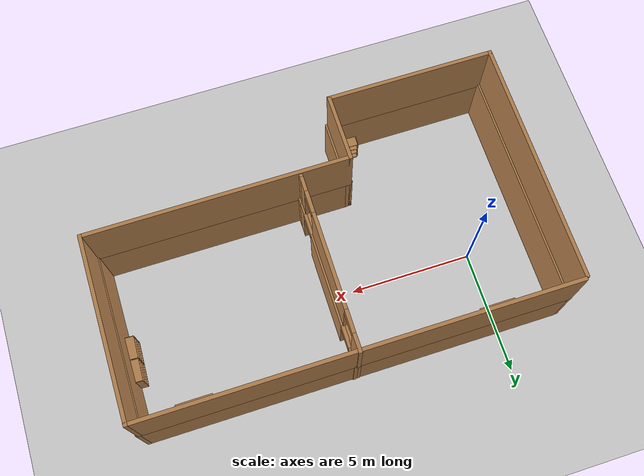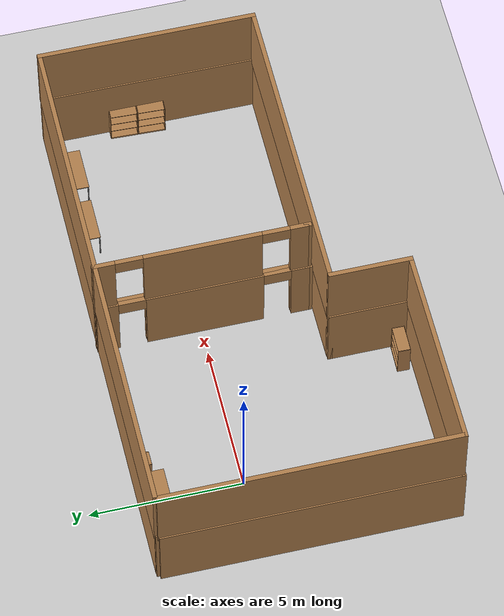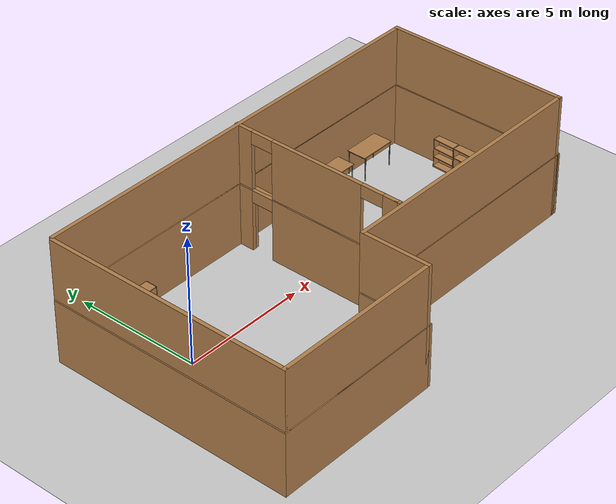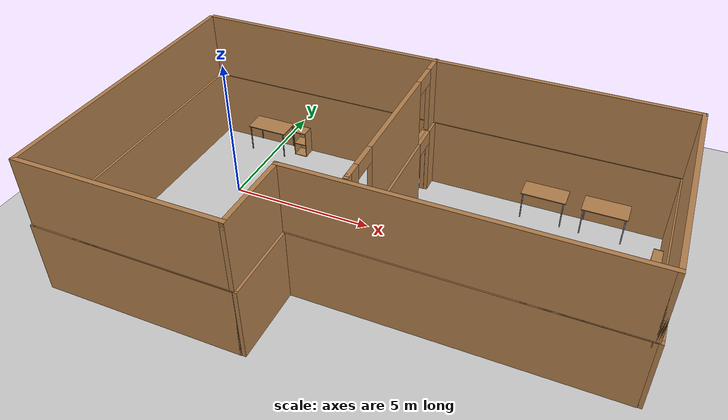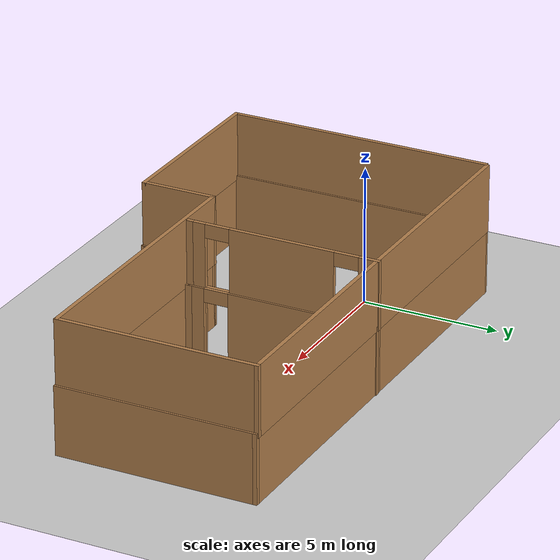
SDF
<sdf version="1.7">
 <world name="default">
  <light name="sun" type="directional">
   <pose>0 0 10 0 -0 0</pose>
   <diffuse>0.8 0.8 0.8 1</diffuse>
   <specular>0.2 0.2 0.2 1</specular>
   <attenuation>
    <range>1000</range>
    <constant>0.9</constant>
    <linear>0.01</linear>
    <quadratic>0.001</quadratic>
   </attenuation>
   <direction>-0.5 0.1 -0.9</direction>
   <spot><inner_angle>0</inner_angle><outer_angle>0</outer_angle><falloff>0</falloff></spot>
  </light>
  <model name="ground_plane">
   <static>1</static>
   <link name="link">
    <collision name="collision">
     <geometry><plane><normal>0 0 1</normal><size>100 100</size></plane></geometry>
     <surface><friction><ode><mu>100</mu><mu2>50</mu2></ode></friction></surface>
    </collision>
    <visual name="visual">
     <cast_shadows>0</cast_shadows>
     <geometry><plane><normal>0 0 1</normal><size>100 100</size></plane></geometry>
     <material>
      <script><uri>file://media/materials/scripts/gazebo.material</uri><name>Gazebo/Grey</name></script>
     </material>
    </visual>
   </link>
  </model>
  <gravity>0 0 -9.8</gravity>
  <magnetic_field>6e-06 2.3e-05 -4.2e-05</magnetic_field>
  <atmosphere type="adiabatic"/>
  <physics type="ode">
   <max_step_size>0.001</max_step_size>
   <real_time_factor>1</real_time_factor>
   <real_time_update_rate>1000</real_time_update_rate>
  </physics>
  <scene><ambient>0.4 0.4 0.4 1</ambient><background>0.7 0.7 0.7 1</background><shadows>1</shadows></scene>
  <audio><device>default</device></audio>
  <spherical_coordinates>
   <surface_model>EARTH_WGS84</surface_model>
   <latitude_deg>0</latitude_deg>
   <longitude_deg>0</longitude_deg>
   <elevation>0</elevation>
   <heading_deg>0</heading_deg>
  </spherical_coordinates>
  <model name="two_rooms_textured">
   <pose>5.81924 -1.50484 0 0 -0 0</pose>
   <link name="Wall_1">
    <collision name="Wall_1_Collision">
     <geometry><box><size>9.75 0.15 2.5</size></box></geometry>
     <pose>0 0 1.25 0 -0 0</pose>
    </collision>
    <visual name="Wall_1_Visual">
     <pose>0 0 1.25 0 -0 0</pose>
     <geometry><box><size>9.75 0.15 2.5</size></box></geometry>
     <material>
      <script><uri>file://media/materials/scripts/gazebo.material</uri><name>Gazebo/Wood</name></script>
      <ambient>1 1 1 1</ambient>
     </material>
     <meta><layer>0</layer></meta>
    </visual>
    <pose>-8.475 -0.066268 0 0 -0 -1.5708</pose>
   </link>
   <link name="Wall_10">
    <collision name="Wall_10_Collision">
     <geometry><box><size>0.25 0.15 2.5</size></box></geometry>
     <pose>0 0 1.25 0 -0 0</pose>
    </collision>
    <visual name="Wall_10_Visual">
     <pose>0 0 1.25 0 -0 0</pose>
     <geometry><box><size>0.25 0.15 2.5</size></box></geometry>
     <material>
      <script><uri>file://media/materials/scripts/gazebo.material</uri><name>Gazebo/Wood</name></script>
      <ambient>1 1 1 1</ambient>
     </material>
     <meta><layer>0</layer></meta>
    </visual>
    <pose>0.118491 -2.03373 0 0 -0 -1.5708</pose>
   </link>
   <link name="Wall_2">
    <collision name="Wall_2_Collision">
     <geometry><box><size>6.75 0.15 2.5</size></box></geometry>
     <pose>0 0 1.25 0 -0 0</pose>
    </collision>
    <visual name="Wall_2_Visual">
     <pose>0 0 1.25 0 -0 0</pose>
     <geometry><box><size>6.75 0.15 2.5</size></box></geometry>
     <material>
      <script><uri>file://media/materials/scripts/gazebo.material</uri><name>Gazebo/Wood</name></script>
      <ambient>1 1 1 1</ambient>
     </material>
     <meta><layer>0</layer></meta>
    </visual>
    <pose>-5.175 -4.86627 0 0 -0 0</pose>
   </link>
   <link name="Wall_3">
    <collision name="Wall_3_Collision">
     <geometry><box><size>2.75 0.15 2.5</size></box></geometry>
     <pose>0 0 1.25 0 -0 0</pose>
    </collision>
    <visual name="Wall_3_Visual">
     <pose>0 0 1.25 0 -0 0</pose>
     <geometry><box><size>2.75 0.15 2.5</size></box></geometry>
     <material>
      <script><uri>file://media/materials/scripts/gazebo.material</uri><name>Gazebo/Wood</name></script>
      <ambient>1 1 1 1</ambient>
     </material>
     <meta><layer>0</layer></meta>
    </visual>
    <pose>-1.875 -3.56627 0 0 -0 1.5708</pose>
   </link>
   <link name="Wall_4">
    <collision name="Wall_4_Collision">
     <geometry><box><size>10.5 0.15 2.5</size></box></geometry>
     <pose>0 0 1.25 0 -0 0</pose>
    </collision>
    <visual name="Wall_4_Visual">
     <pose>0 0 1.25 0 -0 0</pose>
     <geometry><box><size>10.5 0.15 2.5</size></box></geometry>
     <material>
      <script><uri>file://media/materials/scripts/gazebo.material</uri><name>Gazebo/Wood</name></script>
      <ambient>1 1 1 1</ambient>
     </material>
     <meta><layer>0</layer></meta>
    </visual>
    <pose>3.3 -2.26627 0 0 -0 0</pose>
   </link>
   <link name="Wall_5">
    <collision name="Wall_5_Collision">
     <geometry><box><size>7.25 0.15 2.5</size></box></geometry>
     <pose>0 0 1.25 0 -0 0</pose>
    </collision>
    <visual name="Wall_5_Visual">
     <pose>0 0 1.25 0 -0 0</pose>
     <geometry><box><size>7.25 0.15 2.5</size></box></geometry>
     <material>
      <script><uri>file://media/materials/scripts/gazebo.material</uri><name>Gazebo/Wood</name></script>
      <ambient>1 1 1 1</ambient>
     </material>
     <meta><layer>0</layer></meta>
    </visual>
    <pose>8.475 1.28373 0 0 -0 1.5708</pose>
   </link>
   <link name="Wall_6">
    <collision name="Wall_6_Collision">
     <geometry><box><size>17 0.15 2.5</size></box></geometry>
     <pose>0 0 1.25 0 -0 0</pose>
    </collision>
    <visual name="Wall_6_Visual">
     <pose>0 0 1.25 0 -0 0</pose>
     <geometry><box><size>17 0.15 2.5</size></box></geometry>
     <material>
      <script><uri>file://media/materials/scripts/gazebo.material</uri><name>Gazebo/Wood</name></script>
      <ambient>1 1 1 1</ambient>
     </material>
     <meta><layer>0</layer></meta>
    </visual>
    <pose>0.05 4.83373 0 0 -0 3.14159</pose>
   </link>
   <link name="Wall_8">
    <pose>0.118491 1.44127 0 0 -0 -1.5708</pose>
    <visual name="Wall_8_Visual_0">
     <pose>-3.12464 0 1.25 0 -0 0</pose>
     <geometry><box><size>0.750721 0.15 2.5</size></box></geometry>
     <material>
      <script><uri>file://media/materials/scripts/gazebo.material</uri><name>Gazebo/Wood</name></script>
      <ambient>1 1 1 1</ambient>
     </material>
     <meta><layer>0</layer></meta>
    </visual>
    <collision name="Wall_8_Collision_0">
     <geometry><box><size>0.750721 0.15 2.5</size></box></geometry>
     <pose>-3.12464 0 1.25 0 -0 0</pose>
    </collision>
    <visual name="Wall_8_Visual_1">
     <pose>0.075287 0 1.25 0 -0 0</pose>
     <geometry><box><size>3.84913 0.15 2.5</size></box></geometry>
     <material>
      <script><uri>file://media/materials/scripts/gazebo.material</uri><name>Gazebo/Wood</name></script>
      <ambient>1 1 1 1</ambient>
     </material>
     <meta><layer>0</layer></meta>
    </visual>
    <collision name="Wall_8_Collision_1">
     <geometry><box><size>3.84913 0.15 2.5</size></box></geometry>
     <pose>0.075287 0 1.25 0 -0 0</pose>
    </collision>
    <visual name="Wall_8_Visual_2">
     <pose>3.19993 0 1.25 0 -0 0</pose>
     <geometry><box><size>0.600146 0.15 2.5</size></box></geometry>
     <material>
      <script><uri>file://media/materials/scripts/gazebo.material</uri><name>Gazebo/Wood</name></script>
      <ambient>1 1 1 1</ambient>
     </material>
     <meta><layer>0</layer></meta>
    </visual>
    <collision name="Wall_8_Collision_2">
     <geometry><box><size>0.600146 0.15 2.5</size></box></geometry>
     <pose>3.19993 0 1.25 0 -0 0</pose>
    </collision>
    <visual name="Wall_8_Visual_3">
     <pose>-2.29928 0 2.25 0 -0 0</pose>
     <geometry><box><size>0.9 0.15 0.5</size></box></geometry>
     <material>
      <script><uri>file://media/materials/scripts/gazebo.material</uri><name>Gazebo/Wood</name></script>
      <ambient>1 1 1 1</ambient>
     </material>
     <meta><layer>0</layer></meta>
    </visual>
    <collision name="Wall_8_Collision_3">
     <geometry><box><size>0.9 0.15 0.5</size></box></geometry>
     <pose>-2.29928 0 2.25 0 -0 0</pose>
    </collision>
    <visual name="Wall_8_Visual_4">
     <pose>2.44985 0 2.25 0 -0 0</pose>
     <geometry><box><size>0.9 0.15 0.5</size></box></geometry>
     <material>
      <script><uri>file://media/materials/scripts/gazebo.material</uri><name>Gazebo/Wood</name></script>
      <ambient>1 1 1 1</ambient>
     </material>
     <meta><layer>0</layer></meta>
    </visual>
    <collision name="Wall_8_Collision_4">
     <geometry><box><size>0.9 0.15 0.5</size></box></geometry>
     <pose>2.44985 0 2.25 0 -0 0</pose>
    </collision>
   </link>
   <static>1</static>
  </model>
  <model name="table">
   <static>1</static>
   <link name="link">
    <collision name="surface">
     <pose>0 0 1 0 -0 0</pose>
     <geometry><box><size>1.5 0.8 0.03</size></box></geometry>
     <surface><friction><ode><mu>0.6</mu><mu2>0.6</mu2></ode></friction></surface>
    </collision>
    <visual name="visual1">
     <pose>0 0 1 0 -0 0</pose>
     <geometry><box><size>1.5 0.8 0.03</size></box></geometry>
     <material>
      <script><uri>file://media/materials/scripts/gazebo.material</uri><name>Gazebo/Wood</name></script>
     </material>
    </visual>
    <collision name="front_left_leg">
     <pose>0.68 0.38 0.5 0 -0 0</pose>
     <geometry><cylinder><radius>0.02</radius><length>1</length></cylinder></geometry>
    </collision>
    <visual name="front_left_leg">
     <pose>0.68 0.38 0.5 0 -0 0</pose>
     <geometry><cylinder><radius>0.02</radius><length>1</length></cylinder></geometry>
     <material>
      <script><uri>file://media/materials/scripts/gazebo.material</uri><name>Gazebo/Grey</name></script>
     </material>
    </visual>
    <collision name="front_right_leg">
     <pose>0.68 -0.38 0.5 0 -0 0</pose>
     <geometry><cylinder><radius>0.02</radius><length>1</length></cylinder></geometry>
    </collision>
    <visual name="front_right_leg">
     <pose>0.68 -0.38 0.5 0 -0 0</pose>
     <geometry><cylinder><radius>0.02</radius><length>1</length></cylinder></geometry>
     <material>
      <script><uri>file://media/materials/scripts/gazebo.material</uri><name>Gazebo/Grey</name></script>
     </material>
    </visual>
    <collision name="back_right_leg">
     <pose>-0.68 -0.38 0.5 0 -0 0</pose>
     <geometry><cylinder><radius>0.02</radius><length>1</length></cylinder></geometry>
    </collision>
    <visual name="back_right_leg">
     <pose>-0.68 -0.38 0.5 0 -0 0</pose>
     <geometry><cylinder><radius>0.02</radius><length>1</length></cylinder></geometry>
     <material>
      <script><uri>file://media/materials/scripts/gazebo.material</uri><name>Gazebo/Grey</name></script>
     </material>
    </visual>
    <collision name="back_left_leg">
     <pose>-0.68 0.38 0.5 0 -0 0</pose>
     <geometry><cylinder><radius>0.02</radius><length>1</length></cylinder></geometry>
    </collision>
    <visual name="back_left_leg">
     <pose>-0.68 0.38 0.5 0 -0 0</pose>
     <geometry><cylinder><radius>0.02</radius><length>1</length></cylinder></geometry>
     <material>
      <script><uri>file://media/materials/scripts/gazebo.material</uri><name>Gazebo/Grey</name></script>
     </material>
    </visual>
   </link>
   <pose>-0.208377 2.85847 0 0 -0 0</pose>
  </model>
  <model name="table_1">
   <static>1</static>
   <link name="link">
    <collision name="surface">
     <pose>0 0 1 0 -0 0</pose>
     <geometry><box><size>1.5 0.8 0.03</size></box></geometry>
     <surface><friction><ode><mu>0.6</mu><mu2>0.6</mu2></ode></friction></surface>
    </collision>
    <visual name="visual1">
     <pose>0 0 1 0 -0 0</pose>
     <geometry><box><size>1.5 0.8 0.03</size></box></geometry>
     <material>
      <script><uri>file://media/materials/scripts/gazebo.material</uri><name>Gazebo/Wood</name></script>
     </material>
    </visual>
    <collision name="front_left_leg">
     <pose>0.68 0.38 0.5 0 -0 0</pose>
     <geometry><cylinder><radius>0.02</radius><length>1</length></cylinder></geometry>
    </collision>
    <visual name="front_left_leg">
     <pose>0.68 0.38 0.5 0 -0 0</pose>
     <geometry><cylinder><radius>0.02</radius><length>1</length></cylinder></geometry>
     <material>
      <script><uri>file://media/materials/scripts/gazebo.material</uri><name>Gazebo/Grey</name></script>
     </material>
    </visual>
    <collision name="front_right_leg">
     <pose>0.68 -0.38 0.5 0 -0 0</pose>
     <geometry><cylinder><radius>0.02</radius><length>1</length></cylinder></geometry>
    </collision>
    <visual name="front_right_leg">
     <pose>0.68 -0.38 0.5 0 -0 0</pose>
     <geometry><cylinder><radius>0.02</radius><length>1</length></cylinder></geometry>
     <material>
      <script><uri>file://media/materials/scripts/gazebo.material</uri><name>Gazebo/Grey</name></script>
     </material>
    </visual>
    <collision name="back_right_leg">
     <pose>-0.68 -0.38 0.5 0 -0 0</pose>
     <geometry><cylinder><radius>0.02</radius><length>1</length></cylinder></geometry>
    </collision>
    <visual name="back_right_leg">
     <pose>-0.68 -0.38 0.5 0 -0 0</pose>
     <geometry><cylinder><radius>0.02</radius><length>1</length></cylinder></geometry>
     <material>
      <script><uri>file://media/materials/scripts/gazebo.material</uri><name>Gazebo/Grey</name></script>
     </material>
    </visual>
    <collision name="back_left_leg">
     <pose>-0.68 0.38 0.5 0 -0 0</pose>
     <geometry><cylinder><radius>0.02</radius><length>1</length></cylinder></geometry>
    </collision>
    <visual name="back_left_leg">
     <pose>-0.68 0.38 0.5 0 -0 0</pose>
     <geometry><cylinder><radius>0.02</radius><length>1</length></cylinder></geometry>
     <material>
      <script><uri>file://media/materials/scripts/gazebo.material</uri><name>Gazebo/Grey</name></script>
     </material>
    </visual>
   </link>
   <pose>12.2837 2.8566 0 0 -0 0</pose>
  </model>
  <model name="bookshelf">
   <static>1</static>
   <link name="link">
    <inertial><mass>1</mass></inertial>
    <collision name="back">
     <pose>0 0.005 0.6 0 -0 0</pose>
     <geometry><box><size>0.9 0.01 1.2</size></box></geometry>
    </collision>
    <visual name="visual1">
     <pose>0 0.005 0.6 0 -0 0</pose>
     <geometry><box><size>0.9 0.01 1.2</size></box></geometry>
     <material>
      <script><uri>file://media/materials/scripts/gazebo.material</uri><name>Gazebo/Wood</name></script>
     </material>
    </visual>
    <collision name="left_side">
     <pose>0.45 -0.195 0.6 0 -0 0</pose>
     <geometry><box><size>0.02 0.4 1.2</size></box></geometry>
    </collision>
    <visual name="visual2">
     <pose>0.45 -0.195 0.6 0 -0 0</pose>
     <geometry><box><size>0.02 0.4 1.2</size></box></geometry>
     <material>
      <script><uri>file://media/materials/scripts/gazebo.material</uri><name>Gazebo/Wood</name></script>
     </material>
    </visual>
    <collision name="right_side">
     <pose>-0.45 -0.195 0.6 0 -0 0</pose>
     <geometry><box><size>0.02 0.4 1.2</size></box></geometry>
    </collision>
    <visual name="visual3">
     <pose>-0.45 -0.195 0.6 0 -0 0</pose>
     <geometry><box><size>0.02 0.4 1.2</size></box></geometry>
     <material>
      <script><uri>file://media/materials/scripts/gazebo.material</uri><name>Gazebo/Wood</name></script>
     </material>
    </visual>
    <collision name="bottom">
     <pose>0 -0.195 0.03 0 -0 0</pose>
     <geometry><box><size>0.88 0.4 0.06</size></box></geometry>
    </collision>
    <visual name="visual4">
     <pose>0 -0.195 0.03 0 -0 0</pose>
     <geometry><box><size>0.88 0.4 0.06</size></box></geometry>
     <material>
      <script><uri>file://media/materials/scripts/gazebo.material</uri><name>Gazebo/Wood</name></script>
     </material>
    </visual>
    <collision name="top">
     <pose>0 -0.195 1.19 0 -0 0</pose>
     <geometry><box><size>0.88 0.4 0.02</size></box></geometry>
    </collision>
    <visual name="visual5">
     <pose>0 -0.195 1.19 0 -0 0</pose>
     <geometry><box><size>0.88 0.4 0.02</size></box></geometry>
     <material>
      <script><uri>file://media/materials/scripts/gazebo.material</uri><name>Gazebo/Wood</name></script>
     </material>
    </visual>
    <collision name="low_shelf">
     <pose>0 -0.195 0.43 0 -0 0</pose>
     <geometry><box><size>0.88 0.4 0.02</size></box></geometry>
    </collision>
    <visual name="visual6">
     <pose>0 -0.195 0.43 0 -0 0</pose>
     <geometry><box><size>0.88 0.4 0.02</size></box></geometry>
     <material>
      <script><uri>file://media/materials/scripts/gazebo.material</uri><name>Gazebo/Wood</name></script>
     </material>
    </visual>
    <collision name="high_shelf">
     <pose>0 -0.195 0.8 0 -0 0</pose>
     <geometry><box><size>0.88 0.4 0.02</size></box></geometry>
    </collision>
    <visual name="visual7">
     <pose>0 -0.195 0.8 0 -0 0</pose>
     <geometry><box><size>0.88 0.4 0.02</size></box></geometry>
     <material>
      <script><uri>file://media/materials/scripts/gazebo.material</uri><name>Gazebo/Wood</name></script>
     </material>
    </visual>
   </link>
   <pose>3.35475 -6.16345 0 0 -0 3.11844</pose>
  </model>
  <model name="cabinet">
   <static>1</static>
   <link name="cabinet_bottom_plate">
    <inertial>
     <pose>0 0 -1 0 -0 0</pose>
     <inertia><ixx>2.05</ixx><ixy>0</ixy><ixz>0</ixz><iyy>2.05</iyy><iyz>0</iyz><izz>2.05</izz></inertia>
     <mass>25</mass>
    </inertial>
    <collision name="cabinet_bottom_plate_geom">
     <pose>0 0 0.01 0 -0 0</pose>
     <geometry><box><size>0.45 0.45 0.02</size></box></geometry>
    </collision>
    <visual name="cabinet_bottom_plate_geom_visual">
     <pose>0 0 0.01 0 -0 0</pose>
     <geometry><box><size>0.45 0.45 0.02</size></box></geometry>
     <material>
      <script><uri>file://media/materials/scripts/gazebo.material</uri><name>Gazebo/Wood</name></script>
     </material>
    </visual>
    <collision name="cabinet_bottom_plate_geom_cabinet_back_plate">
     <pose>0.235 0 0.51 0 -0 0</pose>
     <geometry><box><size>0.02 0.45 1.02</size></box></geometry>
    </collision>
    <visual name="cabinet_bottom_plate_geom_cabinet_back_plate_visual">
     <pose>0.235 0 0.51 0 -0 0</pose>
     <geometry><box><size>0.02 0.45 1.02</size></box></geometry>
     <material>
      <script><uri>file://media/materials/scripts/gazebo.material</uri><name>Gazebo/Wood</name></script>
     </material>
    </visual>
    <collision name="cabinet_bottom_plate_geom_cabinet_left_plate">
     <pose>0 0.235 0.51 0 -0 0</pose>
     <geometry><box><size>0.45 0.02 1.02</size></box></geometry>
    </collision>
    <visual name="cabinet_bottom_plate_geom_cabinet_left_plate_visual">
     <pose>0 0.235 0.51 0 -0 0</pose>
     <geometry><box><size>0.45 0.02 1.02</size></box></geometry>
     <material>
      <script><uri>file://media/materials/scripts/gazebo.material</uri><name>Gazebo/Wood</name></script>
     </material>
    </visual>
    <collision name="cabinet_bottom_plate_geom_cabinet_middle_plate">
     <pose>0 0 0.51 0 -0 0</pose>
     <geometry><box><size>0.45 0.45 0.02</size></box></geometry>
    </collision>
    <visual name="cabinet_bottom_plate_geom_cabinet_middle_plate_visual">
     <pose>0 0 0.51 0 -0 0</pose>
     <geometry><box><size>0.45 0.45 0.02</size></box></geometry>
     <material>
      <script><uri>file://media/materials/scripts/gazebo.material</uri><name>Gazebo/Wood</name></script>
     </material>
    </visual>
    <collision name="cabinet_bottom_plate_geom_cabinet_right_plate">
     <pose>0 -0.235 0.51 0 -0 0</pose>
     <geometry><box><size>0.45 0.02 1.02</size></box></geometry>
    </collision>
    <visual name="cabinet_bottom_plate_geom_cabinet_right_plate_visual">
     <pose>0 -0.235 0.51 0 -0 0</pose>
     <geometry><box><size>0.45 0.02 1.02</size></box></geometry>
     <material>
      <script><uri>file://media/materials/scripts/gazebo.material</uri><name>Gazebo/Wood</name></script>
     </material>
    </visual>
    <collision name="cabinet_bottom_plate_geom_cabinet_top_plate">
     <pose>0 0 1.01 0 -0 0</pose>
     <geometry><box><size>0.45 0.45 0.02</size></box></geometry>
    </collision>
    <visual name="cabinet_bottom_plate_geom_cabinet_top_plate_visual">
     <pose>0 0 1.01 0 -0 0</pose>
     <geometry><box><size>0.45 0.45 0.02</size></box></geometry>
     <material>
      <script><uri>file://media/materials/scripts/gazebo.material</uri><name>Gazebo/Wood</name></script>
     </material>
    </visual>
   </link>
   <pose>1.01782 3.00182 0 0 -0 1.57288</pose>
  </model>
  <model name="bookshelf_clone">
   <static>1</static>
   <link name="link">
    <inertial><mass>1</mass></inertial>
    <collision name="back">
     <pose>0 0.005 0.6 0 -0 0</pose>
     <geometry><box><size>0.9 0.01 1.2</size></box></geometry>
    </collision>
    <visual name="visual1">
     <pose>0 0.005 0.6 0 -0 0</pose>
     <geometry><box><size>0.9 0.01 1.2</size></box></geometry>
     <material>
      <script><uri>file://media/materials/scripts/gazebo.material</uri><name>Gazebo/Wood</name></script>
     </material>
    </visual>
    <collision name="left_side">
     <pose>0.45 -0.195 0.6 0 -0 0</pose>
     <geometry><box><size>0.02 0.4 1.2</size></box></geometry>
    </collision>
    <visual name="visual2">
     <pose>0.45 -0.195 0.6 0 -0 0</pose>
     <geometry><box><size>0.02 0.4 1.2</size></box></geometry>
     <material>
      <script><uri>file://media/materials/scripts/gazebo.material</uri><name>Gazebo/Wood</name></script>
     </material>
    </visual>
    <collision name="right_side">
     <pose>-0.45 -0.195 0.6 0 -0 0</pose>
     <geometry><box><size>0.02 0.4 1.2</size></box></geometry>
    </collision>
    <visual name="visual3">
     <pose>-0.45 -0.195 0.6 0 -0 0</pose>
     <geometry><box><size>0.02 0.4 1.2</size></box></geometry>
     <material>
      <script><uri>file://media/materials/scripts/gazebo.material</uri><name>Gazebo/Wood</name></script>
     </material>
    </visual>
    <collision name="bottom">
     <pose>0 -0.195 0.03 0 -0 0</pose>
     <geometry><box><size>0.88 0.4 0.06</size></box></geometry>
    </collision>
    <visual name="visual4">
     <pose>0 -0.195 0.03 0 -0 0</pose>
     <geometry><box><size>0.88 0.4 0.06</size></box></geometry>
     <material>
      <script><uri>file://media/materials/scripts/gazebo.material</uri><name>Gazebo/Wood</name></script>
     </material>
    </visual>
    <collision name="top">
     <pose>0 -0.195 1.19 0 -0 0</pose>
     <geometry><box><size>0.88 0.4 0.02</size></box></geometry>
    </collision>
    <visual name="visual5">
     <pose>0 -0.195 1.19 0 -0 0</pose>
     <geometry><box><size>0.88 0.4 0.02</size></box></geometry>
     <material>
      <script><uri>file://media/materials/scripts/gazebo.material</uri><name>Gazebo/Wood</name></script>
     </material>
    </visual>
    <collision name="low_shelf">
     <pose>0 -0.195 0.43 0 -0 0</pose>
     <geometry><box><size>0.88 0.4 0.02</size></box></geometry>
    </collision>
    <visual name="visual6">
     <pose>0 -0.195 0.43 0 -0 0</pose>
     <geometry><box><size>0.88 0.4 0.02</size></box></geometry>
     <material>
      <script><uri>file://media/materials/scripts/gazebo.material</uri><name>Gazebo/Wood</name></script>
     </material>
    </visual>
    <collision name="high_shelf">
     <pose>0 -0.195 0.8 0 -0 0</pose>
     <geometry><box><size>0.88 0.4 0.02</size></box></geometry>
    </collision>
    <visual name="visual7">
     <pose>0 -0.195 0.8 0 -0 0</pose>
     <geometry><box><size>0.88 0.4 0.02</size></box></geometry>
     <material>
      <script><uri>file://media/materials/scripts/gazebo.material</uri><name>Gazebo/Wood</name></script>
     </material>
    </visual>
   </link>
   <pose>14.276 -0.178796 0 0 0 -1.60838</pose>
  </model>
  <model name="bookshelf_clone_clone">
   <static>1</static>
   <link name="link">
    <inertial><mass>1</mass></inertial>
    <collision name="back">
     <pose>0 0.005 0.6 0 -0 0</pose>
     <geometry><box><size>0.9 0.01 1.2</size></box></geometry>
    </collision>
    <visual name="visual1">
     <pose>0 0.005 0.6 0 -0 0</pose>
     <geometry><box><size>0.9 0.01 1.2</size></box></geometry>
     <material>
      <script><uri>file://media/materials/scripts/gazebo.material</uri><name>Gazebo/Wood</name></script>
     </material>
    </visual>
    <collision name="left_side">
     <pose>0.45 -0.195 0.6 0 -0 0</pose>
     <geometry><box><size>0.02 0.4 1.2</size></box></geometry>
    </collision>
    <visual name="visual2">
     <pose>0.45 -0.195 0.6 0 -0 0</pose>
     <geometry><box><size>0.02 0.4 1.2</size></box></geometry>
     <material>
      <script><uri>file://media/materials/scripts/gazebo.material</uri><name>Gazebo/Wood</name></script>
     </material>
    </visual>
    <collision name="right_side">
     <pose>-0.45 -0.195 0.6 0 -0 0</pose>
     <geometry><box><size>0.02 0.4 1.2</size></box></geometry>
    </collision>
    <visual name="visual3">
     <pose>-0.45 -0.195 0.6 0 -0 0</pose>
     <geometry><box><size>0.02 0.4 1.2</size></box></geometry>
     <material>
      <script><uri>file://media/materials/scripts/gazebo.material</uri><name>Gazebo/Wood</name></script>
     </material>
    </visual>
    <collision name="bottom">
     <pose>0 -0.195 0.03 0 -0 0</pose>
     <geometry><box><size>0.88 0.4 0.06</size></box></geometry>
    </collision>
    <visual name="visual4">
     <pose>0 -0.195 0.03 0 -0 0</pose>
     <geometry><box><size>0.88 0.4 0.06</size></box></geometry>
     <material>
      <script><uri>file://media/materials/scripts/gazebo.material</uri><name>Gazebo/Wood</name></script>
     </material>
    </visual>
    <collision name="top">
     <pose>0 -0.195 1.19 0 -0 0</pose>
     <geometry><box><size>0.88 0.4 0.02</size></box></geometry>
    </collision>
    <visual name="visual5">
     <pose>0 -0.195 1.19 0 -0 0</pose>
     <geometry><box><size>0.88 0.4 0.02</size></box></geometry>
     <material>
      <script><uri>file://media/materials/scripts/gazebo.material</uri><name>Gazebo/Wood</name></script>
     </material>
    </visual>
    <collision name="low_shelf">
     <pose>0 -0.195 0.43 0 -0 0</pose>
     <geometry><box><size>0.88 0.4 0.02</size></box></geometry>
    </collision>
    <visual name="visual6">
     <pose>0 -0.195 0.43 0 -0 0</pose>
     <geometry><box><size>0.88 0.4 0.02</size></box></geometry>
     <material>
      <script><uri>file://media/materials/scripts/gazebo.material</uri><name>Gazebo/Wood</name></script>
     </material>
    </visual>
    <collision name="high_shelf">
     <pose>0 -0.195 0.8 0 -0 0</pose>
     <geometry><box><size>0.88 0.4 0.02</size></box></geometry>
    </collision>
    <visual name="visual7">
     <pose>0 -0.195 0.8 0 -0 0</pose>
     <geometry><box><size>0.88 0.4 0.02</size></box></geometry>
     <material>
      <script><uri>file://media/materials/scripts/gazebo.material</uri><name>Gazebo/Wood</name></script>
     </material>
    </visual>
   </link>
   <pose>14.3083 0.744193 0 0 0 -1.60838</pose>
  </model>
  <model name="table_1_clone">
   <static>1</static>
   <link name="link">
    <collision name="surface">
     <pose>0 0 1 0 -0 0</pose>
     <geometry><box><size>1.5 0.8 0.03</size></box></geometry>
     <surface><friction><ode><mu>0.6</mu><mu2>0.6</mu2></ode></friction></surface>
    </collision>
    <visual name="visual1">
     <pose>0 0 1 0 -0 0</pose>
     <geometry><box><size>1.5 0.8 0.03</size></box></geometry>
     <material>
      <script><uri>file://media/materials/scripts/gazebo.material</uri><name>Gazebo/Wood</name></script>
     </material>
    </visual>
    <collision name="front_left_leg">
     <pose>0.68 0.38 0.5 0 -0 0</pose>
     <geometry><cylinder><radius>0.02</radius><length>1</length></cylinder></geometry>
    </collision>
    <visual name="front_left_leg">
     <pose>0.68 0.38 0.5 0 -0 0</pose>
     <geometry><cylinder><radius>0.02</radius><length>1</length></cylinder></geometry>
     <material>
      <script><uri>file://media/materials/scripts/gazebo.material</uri><name>Gazebo/Grey</name></script>
     </material>
    </visual>
    <collision name="front_right_leg">
     <pose>0.68 -0.38 0.5 0 -0 0</pose>
     <geometry><cylinder><radius>0.02</radius><length>1</length></cylinder></geometry>
    </collision>
    <visual name="front_right_leg">
     <pose>0.68 -0.38 0.5 0 -0 0</pose>
     <geometry><cylinder><radius>0.02</radius><length>1</length></cylinder></geometry>
     <material>
      <script><uri>file://media/materials/scripts/gazebo.material</uri><name>Gazebo/Grey</name></script>
     </material>
    </visual>
    <collision name="back_right_leg">
     <pose>-0.68 -0.38 0.5 0 -0 0</pose>
     <geometry><cylinder><radius>0.02</radius><length>1</length></cylinder></geometry>
    </collision>
    <visual name="back_right_leg">
     <pose>-0.68 -0.38 0.5 0 -0 0</pose>
     <geometry><cylinder><radius>0.02</radius><length>1</length></cylinder></geometry>
     <material>
      <script><uri>file://media/materials/scripts/gazebo.material</uri><name>Gazebo/Grey</name></script>
     </material>
    </visual>
    <collision name="back_left_leg">
     <pose>-0.68 0.38 0.5 0 -0 0</pose>
     <geometry><cylinder><radius>0.02</radius><length>1</length></cylinder></geometry>
    </collision>
    <visual name="back_left_leg">
     <pose>-0.68 0.38 0.5 0 -0 0</pose>
     <geometry><cylinder><radius>0.02</radius><length>1</length></cylinder></geometry>
     <material>
      <script><uri>file://media/materials/scripts/gazebo.material</uri><name>Gazebo/Grey</name></script>
     </material>
    </visual>
   </link>
   <pose>10.2658 2.91411 0 0 -0 0</pose>
  </model>
  <model name="two_rooms_textured_0">
   <pose>5.86759 -1.46527 2.3266 0 -0 0</pose>
   <link name="Wall_1">
    <collision name="Wall_1_Collision">
     <geometry><box><size>9.75 0.15 2.5</size></box></geometry>
     <pose>0 0 1.25 0 -0 0</pose>
    </collision>
    <visual name="Wall_1_Visual">
     <pose>0 0 1.25 0 -0 0</pose>
     <geometry><box><size>9.75 0.15 2.5</size></box></geometry>
     <material>
      <script><uri>file://media/materials/scripts/gazebo.material</uri><name>Gazebo/Wood</name></script>
      <ambient>1 1 1 1</ambient>
     </material>
     <meta><layer>0</layer></meta>
    </visual>
    <pose>-8.475 -0.066268 0 0 -0 -1.5708</pose>
   </link>
   <link name="Wall_10">
    <collision name="Wall_10_Collision">
     <geometry><box><size>0.25 0.15 2.5</size></box></geometry>
     <pose>0 0 1.25 0 -0 0</pose>
    </collision>
    <visual name="Wall_10_Visual">
     <pose>0 0 1.25 0 -0 0</pose>
     <geometry><box><size>0.25 0.15 2.5</size></box></geometry>
     <material>
      <script><uri>file://media/materials/scripts/gazebo.material</uri><name>Gazebo/Wood</name></script>
      <ambient>1 1 1 1</ambient>
     </material>
     <meta><layer>0</layer></meta>
    </visual>
    <pose>0.118491 -2.03373 0 0 -0 -1.5708</pose>
   </link>
   <link name="Wall_2">
    <collision name="Wall_2_Collision">
     <geometry><box><size>6.75 0.15 2.5</size></box></geometry>
     <pose>0 0 1.25 0 -0 0</pose>
    </collision>
    <visual name="Wall_2_Visual">
     <pose>0 0 1.25 0 -0 0</pose>
     <geometry><box><size>6.75 0.15 2.5</size></box></geometry>
     <material>
      <script><uri>file://media/materials/scripts/gazebo.material</uri><name>Gazebo/Wood</name></script>
      <ambient>1 1 1 1</ambient>
     </material>
     <meta><layer>0</layer></meta>
    </visual>
    <pose>-5.175 -4.86627 0 0 -0 0</pose>
   </link>
   <link name="Wall_3">
    <collision name="Wall_3_Collision">
     <geometry><box><size>2.75 0.15 2.5</size></box></geometry>
     <pose>0 0 1.25 0 -0 0</pose>
    </collision>
    <visual name="Wall_3_Visual">
     <pose>0 0 1.25 0 -0 0</pose>
     <geometry><box><size>2.75 0.15 2.5</size></box></geometry>
     <material>
      <script><uri>file://media/materials/scripts/gazebo.material</uri><name>Gazebo/Wood</name></script>
      <ambient>1 1 1 1</ambient>
     </material>
     <meta><layer>0</layer></meta>
    </visual>
    <pose>-1.875 -3.56627 0 0 -0 1.5708</pose>
   </link>
   <link name="Wall_4">
    <collision name="Wall_4_Collision">
     <geometry><box><size>10.5 0.15 2.5</size></box></geometry>
     <pose>0 0 1.25 0 -0 0</pose>
    </collision>
    <visual name="Wall_4_Visual">
     <pose>0 0 1.25 0 -0 0</pose>
     <geometry><box><size>10.5 0.15 2.5</size></box></geometry>
     <material>
      <script><uri>file://media/materials/scripts/gazebo.material</uri><name>Gazebo/Wood</name></script>
      <ambient>1 1 1 1</ambient>
     </material>
     <meta><layer>0</layer></meta>
    </visual>
    <pose>3.3 -2.26627 0 0 -0 0</pose>
   </link>
   <link name="Wall_5">
    <collision name="Wall_5_Collision">
     <geometry><box><size>7.25 0.15 2.5</size></box></geometry>
     <pose>0 0 1.25 0 -0 0</pose>
    </collision>
    <visual name="Wall_5_Visual">
     <pose>0 0 1.25 0 -0 0</pose>
     <geometry><box><size>7.25 0.15 2.5</size></box></geometry>
     <material>
      <script><uri>file://media/materials/scripts/gazebo.material</uri><name>Gazebo/Wood</name></script>
      <ambient>1 1 1 1</ambient>
     </material>
     <meta><layer>0</layer></meta>
    </visual>
    <pose>8.475 1.28373 0 0 -0 1.5708</pose>
   </link>
   <link name="Wall_6">
    <collision name="Wall_6_Collision">
     <geometry><box><size>17 0.15 2.5</size></box></geometry>
     <pose>0 0 1.25 0 -0 0</pose>
    </collision>
    <visual name="Wall_6_Visual">
     <pose>0 0 1.25 0 -0 0</pose>
     <geometry><box><size>17 0.15 2.5</size></box></geometry>
     <material>
      <script><uri>file://media/materials/scripts/gazebo.material</uri><name>Gazebo/Wood</name></script>
      <ambient>1 1 1 1</ambient>
     </material>
     <meta><layer>0</layer></meta>
    </visual>
    <pose>0.05 4.83373 0 0 -0 3.14159</pose>
   </link>
   <link name="Wall_8">
    <pose>0.118491 1.44127 0 0 -0 -1.5708</pose>
    <visual name="Wall_8_Visual_0">
     <pose>-3.12464 0 1.25 0 -0 0</pose>
     <geometry><box><size>0.750721 0.15 2.5</size></box></geometry>
     <material>
      <script><uri>file://media/materials/scripts/gazebo.material</uri><name>Gazebo/Wood</name></script>
      <ambient>1 1 1 1</ambient>
     </material>
     <meta><layer>0</layer></meta>
    </visual>
    <collision name="Wall_8_Collision_0">
     <geometry><box><size>0.750721 0.15 2.5</size></box></geometry>
     <pose>-3.12464 0 1.25 0 -0 0</pose>
    </collision>
    <visual name="Wall_8_Visual_1">
     <pose>0.075287 0 1.25 0 -0 0</pose>
     <geometry><box><size>3.84913 0.15 2.5</size></box></geometry>
     <material>
      <script><uri>file://media/materials/scripts/gazebo.material</uri><name>Gazebo/Wood</name></script>
      <ambient>1 1 1 1</ambient>
     </material>
     <meta><layer>0</layer></meta>
    </visual>
    <collision name="Wall_8_Collision_1">
     <geometry><box><size>3.84913 0.15 2.5</size></box></geometry>
     <pose>0.075287 0 1.25 0 -0 0</pose>
    </collision>
    <visual name="Wall_8_Visual_2">
     <pose>3.19993 0 1.25 0 -0 0</pose>
     <geometry><box><size>0.600146 0.15 2.5</size></box></geometry>
     <material>
      <script><uri>file://media/materials/scripts/gazebo.material</uri><name>Gazebo/Wood</name></script>
      <ambient>1 1 1 1</ambient>
     </material>
     <meta><layer>0</layer></meta>
    </visual>
    <collision name="Wall_8_Collision_2">
     <geometry><box><size>0.600146 0.15 2.5</size></box></geometry>
     <pose>3.19993 0 1.25 0 -0 0</pose>
    </collision>
    <visual name="Wall_8_Visual_3">
     <pose>-2.29928 0 2.25 0 -0 0</pose>
     <geometry><box><size>0.9 0.15 0.5</size></box></geometry>
     <material>
      <script><uri>file://media/materials/scripts/gazebo.material</uri><name>Gazebo/Wood</name></script>
      <ambient>1 1 1 1</ambient>
     </material>
     <meta><layer>0</layer></meta>
    </visual>
    <collision name="Wall_8_Collision_3">
     <geometry><box><size>0.9 0.15 0.5</size></box></geometry>
     <pose>-2.29928 0 2.25 0 -0 0</pose>
    </collision>
    <visual name="Wall_8_Visual_4">
     <pose>2.44985 0 2.25 0 -0 0</pose>
     <geometry><box><size>0.9 0.15 0.5</size></box></geometry>
     <material>
      <script><uri>file://media/materials/scripts/gazebo.material</uri><name>Gazebo/Wood</name></script>
      <ambient>1 1 1 1</ambient>
     </material>
     <meta><layer>0</layer></meta>
    </visual>
    <collision name="Wall_8_Collision_4">
     <geometry><box><size>0.9 0.15 0.5</size></box></geometry>
     <pose>2.44985 0 2.25 0 -0 0</pose>
    </collision>
   </link>
   <static>1</static>
  </model>
  <model name="two_rooms_textured_1">
   <pose>5.9494 -1.49288 0 0 -0 0</pose>
   <link name="Wall_1">
    <collision name="Wall_1_Collision">
     <geometry><box><size>9.75 0.15 2.5</size></box></geometry>
     <pose>0 0 1.25 0 -0 0</pose>
    </collision>
    <visual name="Wall_1_Visual">
     <pose>0 0 1.25 0 -0 0</pose>
     <geometry><box><size>9.75 0.15 2.5</size></box></geometry>
     <material>
      <script><uri>file://media/materials/scripts/gazebo.material</uri><name>Gazebo/Wood</name></script>
      <ambient>1 1 1 1</ambient>
     </material>
     <meta><layer>0</layer></meta>
    </visual>
    <pose>-8.475 -0.066268 0 0 -0 -1.5708</pose>
   </link>
   <link name="Wall_10">
    <collision name="Wall_10_Collision">
     <geometry><box><size>0.25 0.15 2.5</size></box></geometry>
     <pose>0 0 1.25 0 -0 0</pose>
    </collision>
    <visual name="Wall_10_Visual">
     <pose>0 0 1.25 0 -0 0</pose>
     <geometry><box><size>0.25 0.15 2.5</size></box></geometry>
     <material>
      <script><uri>file://media/materials/scripts/gazebo.material</uri><name>Gazebo/Wood</name></script>
      <ambient>1 1 1 1</ambient>
     </material>
     <meta><layer>0</layer></meta>
    </visual>
    <pose>0.118491 -2.03373 0 0 -0 -1.5708</pose>
   </link>
   <link name="Wall_2">
    <collision name="Wall_2_Collision">
     <geometry><box><size>6.75 0.15 2.5</size></box></geometry>
     <pose>0 0 1.25 0 -0 0</pose>
    </collision>
    <visual name="Wall_2_Visual">
     <pose>0 0 1.25 0 -0 0</pose>
     <geometry><box><size>6.75 0.15 2.5</size></box></geometry>
     <material>
      <script><uri>file://media/materials/scripts/gazebo.material</uri><name>Gazebo/Wood</name></script>
      <ambient>1 1 1 1</ambient>
     </material>
     <meta><layer>0</layer></meta>
    </visual>
    <pose>-5.175 -4.86627 0 0 -0 0</pose>
   </link>
   <link name="Wall_3">
    <collision name="Wall_3_Collision">
     <geometry><box><size>2.75 0.15 2.5</size></box></geometry>
     <pose>0 0 1.25 0 -0 0</pose>
    </collision>
    <visual name="Wall_3_Visual">
     <pose>0 0 1.25 0 -0 0</pose>
     <geometry><box><size>2.75 0.15 2.5</size></box></geometry>
     <material>
      <script><uri>file://media/materials/scripts/gazebo.material</uri><name>Gazebo/Wood</name></script>
      <ambient>1 1 1 1</ambient>
     </material>
     <meta><layer>0</layer></meta>
    </visual>
    <pose>-1.875 -3.56627 0 0 -0 1.5708</pose>
   </link>
   <link name="Wall_4">
    <collision name="Wall_4_Collision">
     <geometry><box><size>10.5 0.15 2.5</size></box></geometry>
     <pose>0 0 1.25 0 -0 0</pose>
    </collision>
    <visual name="Wall_4_Visual">
     <pose>0 0 1.25 0 -0 0</pose>
     <geometry><box><size>10.5 0.15 2.5</size></box></geometry>
     <material>
      <script><uri>file://media/materials/scripts/gazebo.material</uri><name>Gazebo/Wood</name></script>
      <ambient>1 1 1 1</ambient>
     </material>
     <meta><layer>0</layer></meta>
    </visual>
    <pose>3.3 -2.26627 0 0 -0 0</pose>
   </link>
   <link name="Wall_5">
    <collision name="Wall_5_Collision">
     <geometry><box><size>7.25 0.15 2.5</size></box></geometry>
     <pose>0 0 1.25 0 -0 0</pose>
    </collision>
    <visual name="Wall_5_Visual">
     <pose>0 0 1.25 0 -0 0</pose>
     <geometry><box><size>7.25 0.15 2.5</size></box></geometry>
     <material>
      <script><uri>file://media/materials/scripts/gazebo.material</uri><name>Gazebo/Wood</name></script>
      <ambient>1 1 1 1</ambient>
     </material>
     <meta><layer>0</layer></meta>
    </visual>
    <pose>8.475 1.28373 0 0 -0 1.5708</pose>
   </link>
   <link name="Wall_6">
    <collision name="Wall_6_Collision">
     <geometry><box><size>17 0.15 2.5</size></box></geometry>
     <pose>0 0 1.25 0 -0 0</pose>
    </collision>
    <visual name="Wall_6_Visual">
     <pose>0 0 1.25 0 -0 0</pose>
     <geometry><box><size>17 0.15 2.5</size></box></geometry>
     <material>
      <script><uri>file://media/materials/scripts/gazebo.material</uri><name>Gazebo/Wood</name></script>
      <ambient>1 1 1 1</ambient>
     </material>
     <meta><layer>0</layer></meta>
    </visual>
    <pose>0.05 4.83373 0 0 -0 3.14159</pose>
   </link>
   <link name="Wall_8">
    <pose>0.118491 1.44127 0 0 -0 -1.5708</pose>
    <visual name="Wall_8_Visual_0">
     <pose>-3.12464 0 1.25 0 -0 0</pose>
     <geometry><box><size>0.750721 0.15 2.5</size></box></geometry>
     <material>
      <script><uri>file://media/materials/scripts/gazebo.material</uri><name>Gazebo/Wood</name></script>
      <ambient>1 1 1 1</ambient>
     </material>
     <meta><layer>0</layer></meta>
    </visual>
    <collision name="Wall_8_Collision_0">
     <geometry><box><size>0.750721 0.15 2.5</size></box></geometry>
     <pose>-3.12464 0 1.25 0 -0 0</pose>
    </collision>
    <visual name="Wall_8_Visual_1">
     <pose>0.075287 0 1.25 0 -0 0</pose>
     <geometry><box><size>3.84913 0.15 2.5</size></box></geometry>
     <material>
      <script><uri>file://media/materials/scripts/gazebo.material</uri><name>Gazebo/Wood</name></script>
      <ambient>1 1 1 1</ambient>
     </material>
     <meta><layer>0</layer></meta>
    </visual>
    <collision name="Wall_8_Collision_1">
     <geometry><box><size>3.84913 0.15 2.5</size></box></geometry>
     <pose>0.075287 0 1.25 0 -0 0</pose>
    </collision>
    <visual name="Wall_8_Visual_2">
     <pose>3.19993 0 1.25 0 -0 0</pose>
     <geometry><box><size>0.600146 0.15 2.5</size></box></geometry>
     <material>
      <script><uri>file://media/materials/scripts/gazebo.material</uri><name>Gazebo/Wood</name></script>
      <ambient>1 1 1 1</ambient>
     </material>
     <meta><layer>0</layer></meta>
    </visual>
    <collision name="Wall_8_Collision_2">
     <geometry><box><size>0.600146 0.15 2.5</size></box></geometry>
     <pose>3.19993 0 1.25 0 -0 0</pose>
    </collision>
    <visual name="Wall_8_Visual_3">
     <pose>-2.29928 0 2.25 0 -0 0</pose>
     <geometry><box><size>0.9 0.15 0.5</size></box></geometry>
     <material>
      <script><uri>file://media/materials/scripts/gazebo.material</uri><name>Gazebo/Wood</name></script>
      <ambient>1 1 1 1</ambient>
     </material>
     <meta><layer>0</layer></meta>
    </visual>
    <collision name="Wall_8_Collision_3">
     <geometry><box><size>0.9 0.15 0.5</size></box></geometry>
     <pose>-2.29928 0 2.25 0 -0 0</pose>
    </collision>
    <visual name="Wall_8_Visual_4">
     <pose>2.44985 0 2.25 0 -0 0</pose>
     <geometry><box><size>0.9 0.15 0.5</size></box></geometry>
     <material>
      <script><uri>file://media/materials/scripts/gazebo.material</uri><name>Gazebo/Wood</name></script>
      <ambient>1 1 1 1</ambient>
     </material>
     <meta><layer>0</layer></meta>
    </visual>
    <collision name="Wall_8_Collision_4">
     <geometry><box><size>0.9 0.15 0.5</size></box></geometry>
     <pose>2.44985 0 2.25 0 -0 0</pose>
    </collision>
   </link>
   <static>1</static>
  </model>
 </world>
</sdf>
